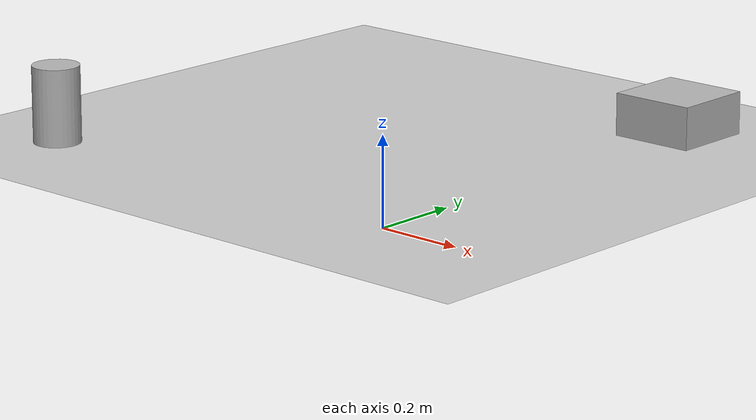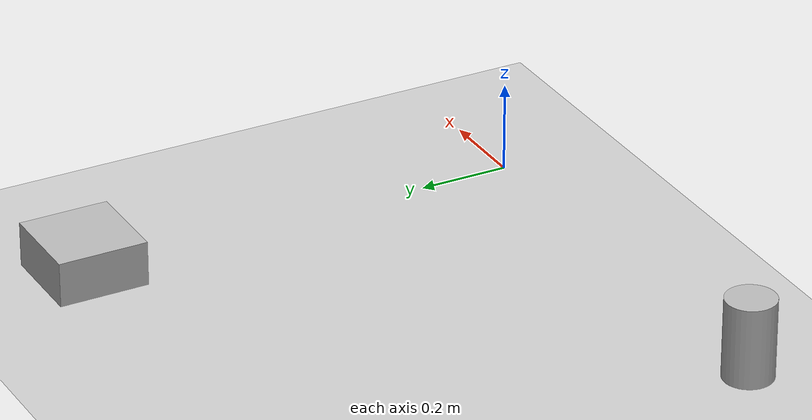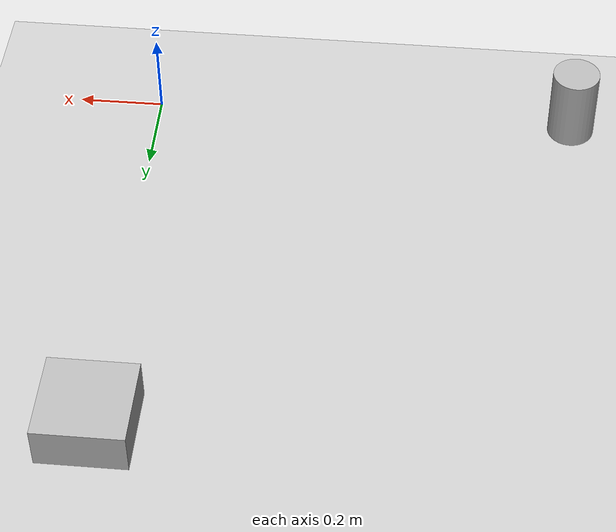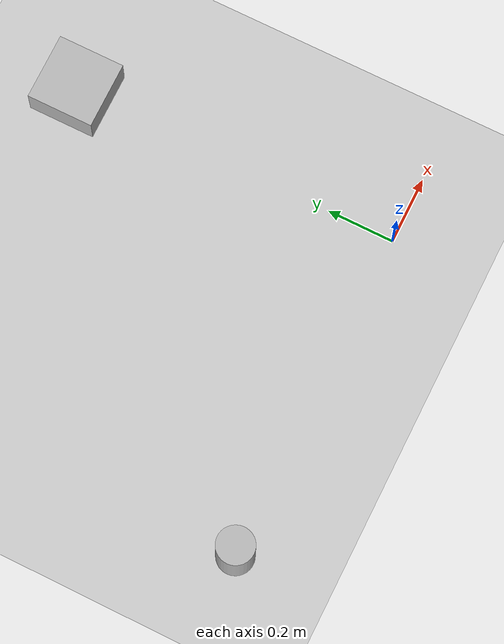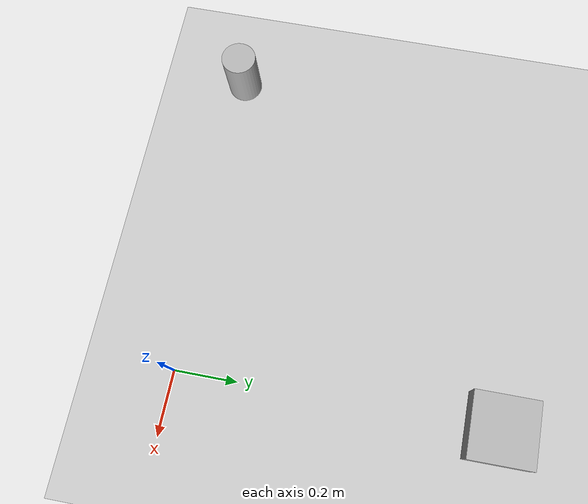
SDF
<sdf version="1.7">
 <world name="default">
  <light name="sun" type="directional">
   <pose>0 0 10 0 -0 0</pose>
   <diffuse>0.8 0.8 0.8 1</diffuse>
   <specular>0.2 0.2 0.2 1</specular>
   <attenuation>
    <range>1000</range>
    <constant>0.9</constant>
    <linear>0.01</linear>
    <quadratic>0.001</quadratic>
   </attenuation>
   <direction>-0.5 0.1 -0.9</direction>
   <spot><inner_angle>0</inner_angle><outer_angle>0</outer_angle><falloff>0</falloff></spot>
  </light>
  <model name="ground_plane">
   <static>1</static>
   <link name="link">
    <collision name="collision">
     <geometry><plane><normal>0 0 1</normal><size>100 100</size></plane></geometry>
     <surface>
      <contact><collide_bitmask>65535</collide_bitmask></contact>
      <friction><ode><mu>100</mu><mu2>50</mu2></ode></friction>
     </surface>
    </collision>
    <visual name="visual">
     <cast_shadows>0</cast_shadows>
     <geometry><plane><normal>0 0 1</normal><size>100 100</size></plane></geometry>
     <material>
      <script><uri>file://media/materials/scripts/gazebo.material</uri><name>Gazebo/Grey</name></script>
     </material>
    </visual>
   </link>
  </model>
  <gravity>0 0 -9.8</gravity>
  <magnetic_field>6e-06 2.3e-05 -4.2e-05</magnetic_field>
  <atmosphere type="adiabatic"/>
  <physics type="ode">
   <max_step_size>0.001</max_step_size>
   <real_time_factor>1</real_time_factor>
   <real_time_update_rate>1000</real_time_update_rate>
  </physics>
  <scene><ambient>0.4 0.4 0.4 1</ambient><background>0.7 0.7 0.7 1</background><shadows>1</shadows></scene>
  <spherical_coordinates>
   <surface_model>EARTH_WGS84</surface_model>
   <latitude_deg>0</latitude_deg>
   <longitude_deg>0</longitude_deg>
   <elevation>0</elevation>
   <heading_deg>0</heading_deg>
  </spherical_coordinates>
  <model name="test">
   <link name="link_0">
    <visual name="visual">
     <geometry><mesh><uri>/home/aum/aruco_ws/src/aruco/models/cylinder/meshes/model.obj</uri></mesh></geometry>
    </visual>
    <collision name="collision_0">
     <geometry><mesh><uri>/home/aum/aruco_ws/src/aruco/models/cylinder/meshes/model.obj</uri></mesh></geometry>
    </collision>
    <inertial>
     <inertia><ixx>1</ixx><ixy>0</ixy><ixz>0</ixz><iyy>1</iyy><iyz>0</iyz><izz>1</izz></inertia>
     <mass>1</mass>
    </inertial>
   </link>
   <pose>-0.999803 9.4e-05 0.090125 1.5699 0.002277 0.076632</pose>
  </model>
  <model name="test_0">
   <link name="link_0">
    <visual name="visual">
     <geometry><mesh><uri>/home/aum/aruco_ws/src/aruco/models/box/meshes/model.obj</uri></mesh></geometry>
    </visual>
    <collision name="collision_0">
     <geometry><mesh><uri>/home/aum/aruco_ws/src/aruco/models/box/meshes/model.obj</uri></mesh></geometry>
    </collision>
    <inertial>
     <inertia><ixx>1</ixx><ixy>0</ixy><ixz>0</ixz><iyy>1</iyy><iyz>0</iyz><izz>1</izz></inertia>
     <mass>1</mass>
    </inertial>
   </link>
   <pose>0 1 0.049998 1.5708 1e-06 -1.5706</pose>
  </model>
 </world>
</sdf>
